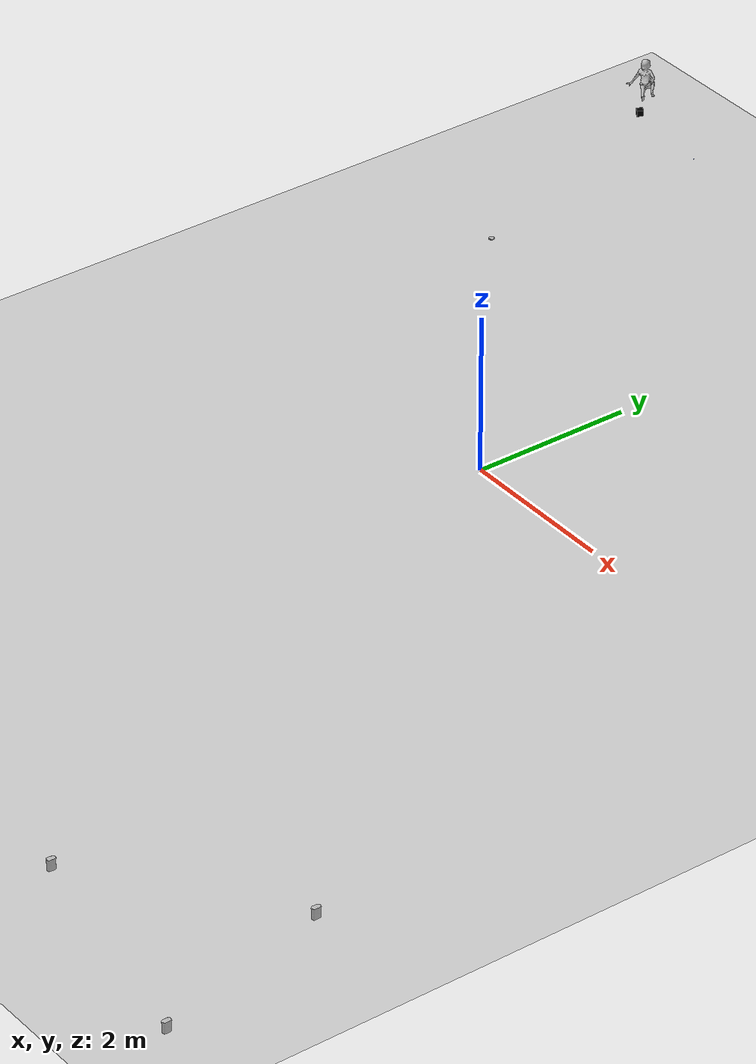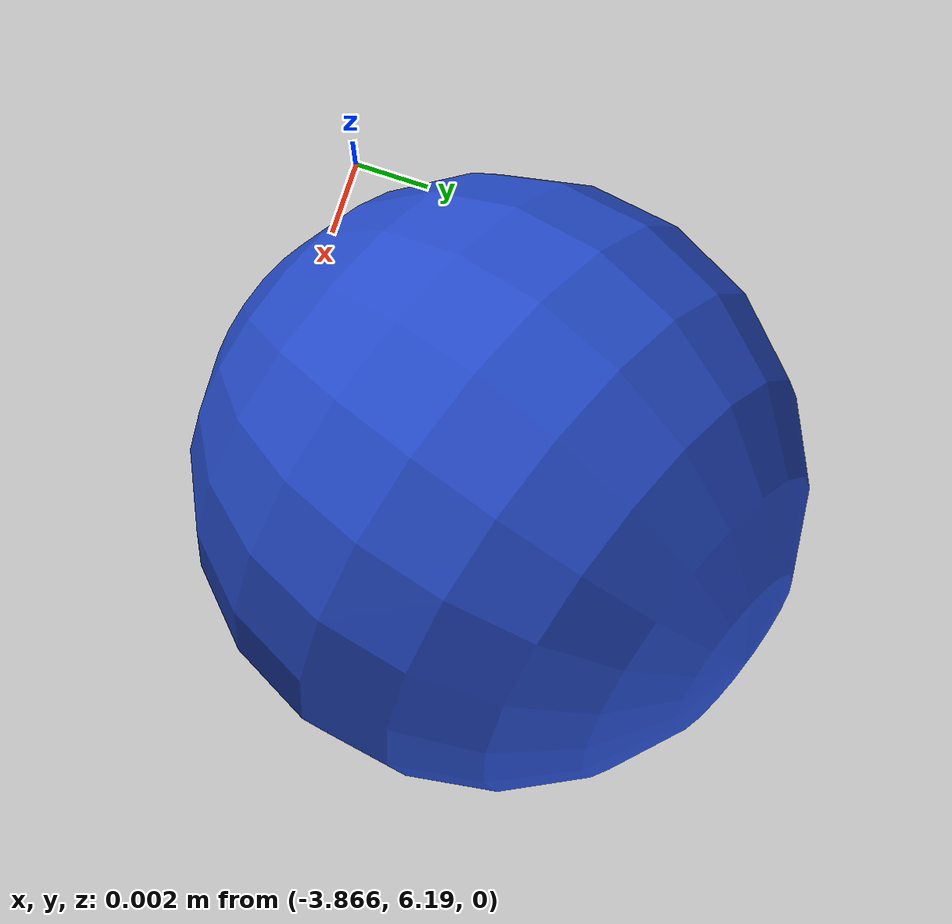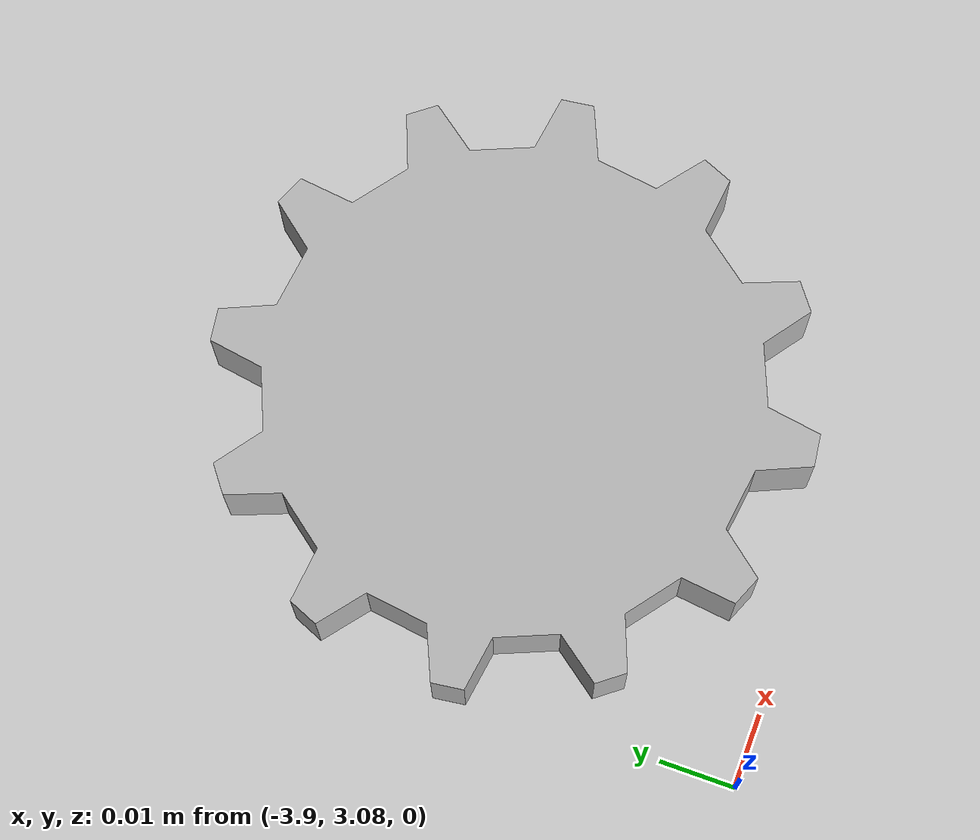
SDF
<sdf version="1.7">
 <world name="default">
  <light name="sun" type="directional">
   <pose>0 0 10 0 -0 0</pose>
   <diffuse>0.8 0.8 0.8 1</diffuse>
   <specular>0.2 0.2 0.2 1</specular>
   <attenuation>
    <range>1000</range>
    <constant>0.9</constant>
    <linear>0.01</linear>
    <quadratic>0.001</quadratic>
   </attenuation>
   <direction>-0.5 0.1 -0.9</direction>
   <spot><inner_angle>0</inner_angle><outer_angle>0</outer_angle><falloff>0</falloff></spot>
  </light>
  <model name="ground_plane">
   <static>1</static>
   <link name="link">
    <collision name="collision">
     <geometry><plane><normal>0 0 1</normal><size>100 100</size></plane></geometry>
     <surface>
      <contact><collide_bitmask>65535</collide_bitmask></contact>
      <friction><ode><mu>100</mu><mu2>50</mu2></ode></friction>
     </surface>
    </collision>
    <visual name="visual">
     <cast_shadows>0</cast_shadows>
     <geometry><plane><normal>0 0 1</normal><size>100 100</size></plane></geometry>
     <material>
      <script><uri>file://media/materials/scripts/gazebo.material</uri><name>Gazebo/Grey</name></script>
     </material>
    </visual>
   </link>
  </model>
  <gravity>0 0 -9.8</gravity>
  <magnetic_field>6e-06 2.3e-05 -4.2e-05</magnetic_field>
  <atmosphere type="adiabatic"/>
  <physics type="ode">
   <max_step_size>0.001</max_step_size>
   <real_time_factor>1</real_time_factor>
   <real_time_update_rate>1000</real_time_update_rate>
  </physics>
  <scene><ambient>0.4 0.4 0.4 1</ambient><background>0.7 0.7 0.7 1</background><shadows>1</shadows></scene>
  <audio><device>default</device></audio>
  <spherical_coordinates>
   <surface_model>EARTH_WGS84</surface_model>
   <latitude_deg>0</latitude_deg>
   <longitude_deg>0</longitude_deg>
   <elevation>0</elevation>
   <heading_deg>0</heading_deg>
  </spherical_coordinates>
  <light name="user_directional_light_0" type="directional">
   <pose>23.3336 -29.9529 1 0 -0 0</pose>
   <diffuse>0.5 0.5 0.5 1</diffuse>
   <specular>0.1 0.1 0.1 1</specular>
   <direction>0.1 0.1 -0.9</direction>
   <attenuation>
    <range>20</range>
    <constant>0.5</constant>
    <linear>0.01</linear>
    <quadratic>0.001</quadratic>
   </attenuation>
  </light>
  <light name="user_directional_light_1" type="directional">
   <pose>-23.2586 -34.1296 1 0 -0 0</pose>
   <diffuse>0.5 0.5 0.5 1</diffuse>
   <specular>0.1 0.1 0.1 1</specular>
   <direction>0.1 0.1 -0.9</direction>
   <attenuation>
    <range>20</range>
    <constant>0.5</constant>
    <linear>0.01</linear>
    <quadratic>0.001</quadratic>
   </attenuation>
  </light>
  <light name="user_directional_light_2" type="directional">
   <pose>0.602328 -38.8041 1 0 -0 0</pose>
   <diffuse>0.5 0.5 0.5 1</diffuse>
   <specular>0.1 0.1 0.1 1</specular>
   <direction>0.1 0.1 -0.9</direction>
   <attenuation>
    <range>20</range>
    <constant>0.5</constant>
    <linear>0.01</linear>
    <quadratic>0.001</quadratic>
   </attenuation>
  </light>
  <light name="user_directional_light_3" type="directional">
   <pose>21.4377 15.6328 1 0 -0 0</pose>
   <diffuse>0.5 0.5 0.5 1</diffuse>
   <specular>0.1 0.1 0.1 1</specular>
   <direction>0.1 0.1 -0.9</direction>
   <attenuation>
    <range>20</range>
    <constant>0.5</constant>
    <linear>0.01</linear>
    <quadratic>0.001</quadratic>
   </attenuation>
  </light>
  <light name="user_directional_light_4" type="directional">
   <pose>-19.8489 23.5683 1 0 -0 0</pose>
   <diffuse>0.5 0.5 0.5 1</diffuse>
   <specular>0.1 0.1 0.1 1</specular>
   <direction>0.1 0.1 -0.9</direction>
   <attenuation>
    <range>20</range>
    <constant>0.5</constant>
    <linear>0.01</linear>
    <quadratic>0.001</quadratic>
   </attenuation>
  </light>
  <light name="user_directional_light_5" type="directional">
   <pose>24.8705 -7.94977 1 0 -0 0</pose>
   <diffuse>0.5 0.5 0.5 1</diffuse>
   <specular>0.1 0.1 0.1 1</specular>
   <direction>0.1 0.1 -0.9</direction>
   <attenuation>
    <range>20</range>
    <constant>0.5</constant>
    <linear>0.01</linear>
    <quadratic>0.001</quadratic>
   </attenuation>
  </light>
  <light name="user_directional_light_6" type="directional">
   <pose>-20.8535 1.82174 1 0 -0 0</pose>
   <diffuse>0.5 0.5 0.5 1</diffuse>
   <specular>0.1 0.1 0.1 1</specular>
   <direction>0.1 0.1 -0.9</direction>
   <attenuation>
    <range>20</range>
    <constant>0.5</constant>
    <linear>0.01</linear>
    <quadratic>0.001</quadratic>
   </attenuation>
  </light>
  <light name="user_directional_light_7" type="directional">
   <pose>9.48126 24.5946 1 0 -0 0</pose>
   <diffuse>0.5 0.5 0.5 1</diffuse>
   <specular>0.1 0.1 0.1 1</specular>
   <direction>0.1 0.1 -0.9</direction>
   <attenuation>
    <range>20</range>
    <constant>0.5</constant>
    <linear>0.01</linear>
    <quadratic>0.001</quadratic>
   </attenuation>
  </light>
  <light name="user_directional_light_8" type="directional">
   <pose>-2.1673 26.1301 1 0 -0 0</pose>
   <diffuse>0.5 0.5 0.5 1</diffuse>
   <specular>0.1 0.1 0.1 1</specular>
   <direction>0.1 0.1 -0.9</direction>
   <attenuation>
    <range>20</range>
    <constant>0.5</constant>
    <linear>0.01</linear>
    <quadratic>0.001</quadratic>
   </attenuation>
  </light>
  <light name="user_directional_light_9" type="directional">
   <pose>-14.7782 23.9597 1 0 -0 0</pose>
   <diffuse>0.5 0.5 0.5 1</diffuse>
   <specular>0.1 0.1 0.1 1</specular>
   <direction>0.1 0.1 -0.9</direction>
   <attenuation>
    <range>20</range>
    <constant>0.5</constant>
    <linear>0.01</linear>
    <quadratic>0.001</quadratic>
   </attenuation>
  </light>
  <light name="user_directional_light_10" type="directional">
   <pose>15.9332 -36.7575 1 0 -0 0</pose>
   <diffuse>0.5 0.5 0.5 1</diffuse>
   <specular>0.1 0.1 0.1 1</specular>
   <direction>0.1 0.1 -0.9</direction>
   <attenuation>
    <range>20</range>
    <constant>0.5</constant>
    <linear>0.01</linear>
    <quadratic>0.001</quadratic>
   </attenuation>
  </light>
  <light name="user_directional_light_11" type="directional">
   <pose>-13.8316 -37.8102 1 0 -0 0</pose>
   <diffuse>0.5 0.5 0.5 1</diffuse>
   <specular>0.1 0.1 0.1 1</specular>
   <direction>0.1 0.1 -0.9</direction>
   <attenuation>
    <range>20</range>
    <constant>0.5</constant>
    <linear>0.01</linear>
    <quadratic>0.001</quadratic>
   </attenuation>
  </light>
  <model name="BREAKFAST_MENU">
   <link name="link_0">
    <visual name="visual">
     <geometry>
      <mesh>
       <uri>/home/vipul/.ignition/fuel/fuel.ignitionrobotics.org/googleresearch/models/breakfast_menu/1/meshes/model.obj</uri>
      </mesh>
     </geometry>
    </visual>
    <collision name="collision_0">
     <geometry>
      <mesh>
       <uri>/home/vipul/.ignition/fuel/fuel.ignitionrobotics.org/googleresearch/models/breakfast_menu/1/meshes/model.obj</uri>
      </mesh>
     </geometry>
    </collision>
    <inertial>
     <inertia><ixx>1</ixx><ixy>0</ixy><ixz>0</ixz><iyy>1</iyy><iyz>0</iyz><izz>1</izz></inertia>
     <mass>1</mass>
    </inertial>
   </link>
   <pose>3.20367 -7.93726 -0.000455 -0.004645 -0.007947 -0.069831</pose>
  </model>
  <model name="3D_Dollhouse_TablePurple">
   <link name="link_0">
    <visual name="visual">
     <geometry>
      <mesh>
       <uri>/home/vipul/.ignition/fuel/fuel.ignitionrobotics.org/googleresearch/models/3d_dollhouse_tablepurple/1/meshes/model.obj</uri>
      </mesh>
     </geometry>
    </visual>
    <collision name="collision_0">
     <geometry>
      <mesh>
       <uri>/home/vipul/.ignition/fuel/fuel.ignitionrobotics.org/googleresearch/models/3d_dollhouse_tablepurple/1/meshes/model.obj</uri>
      </mesh>
     </geometry>
    </collision>
    <inertial>
     <inertia><ixx>1</ixx><ixy>0</ixy><ixz>0</ixz><iyy>1</iyy><iyz>0</iyz><izz>1</izz></inertia>
     <mass>1</mass>
    </inertial>
   </link>
   <pose>6.04295 -8.49941 -0.00049 -0.006494 0.0117 -0.000119</pose>
  </model>
  <model name="Womens_Teva_Capistrano_Bootie">
   <link name="link_0">
    <visual name="visual">
     <geometry>
      <mesh>
       <uri>/home/vipul/.ignition/fuel/fuel.ignitionrobotics.org/googleresearch/models/womens_teva_capistrano_bootie/1/meshes/model.obj</uri>
      </mesh>
     </geometry>
    </visual>
    <collision name="collision_0">
     <geometry>
      <mesh>
       <uri>/home/vipul/.ignition/fuel/fuel.ignitionrobotics.org/googleresearch/models/womens_teva_capistrano_bootie/1/meshes/model.obj</uri>
      </mesh>
     </geometry>
    </collision>
    <inertial>
     <inertia><ixx>1</ixx><ixy>0</ixy><ixz>0</ixz><iyy>1</iyy><iyz>0</iyz><izz>1</izz></inertia>
     <mass>1</mass>
    </inertial>
   </link>
   <pose>5.4575 -6.26247 -0.000232 -0.001699 0.011557 -1e-05</pose>
  </model>
  <model name="marble_1_5cm">
   <link name="link">
    <pose>0 0 0.0075 0 -0 0</pose>
    <inertial>
     <mass>0.0062</mass>
     <inertia>
      <ixx>1.395e-07</ixx>
      <ixy>0</ixy>
      <ixz>0</ixz>
      <iyy>1.395e-07</iyy>
      <iyz>0</iyz>
      <izz>1.395e-07</izz>
     </inertia>
    </inertial>
    <collision name="collision">
     <geometry><sphere><radius>0.0075</radius></sphere></geometry>
     <surface>
      <contact>
       <poissons_ratio>0.22</poissons_ratio>
       <elastic_modulus>5.1e+10</elastic_modulus>
       <ode><kp>100000</kp><kd>100</kd><max_vel>100</max_vel><min_depth>0.001</min_depth></ode>
      </contact>
      <friction>
       <torsional>
        <coefficient>1</coefficient>
        <use_patch_radius>0</use_patch_radius>
        <surface_radius>0.01</surface_radius>
       </torsional>
      </friction>
     </surface>
    </collision>
    <visual name="visual">
     <geometry><sphere><radius>0.0075</radius></sphere></geometry>
     <material>
      <script><uri>file://media/materials/scripts/gazebo.material</uri><name>Gazebo/Blue</name></script>
     </material>
    </visual>
    <velocity_decay><linear>0</linear><angular>0.005</angular></velocity_decay>
   </link>
   <pose>-3.85517 6.2037 0.007489 1.71217 -0.359804 -0.401598</pose>
  </model>
  <model name="gear_part">
   <link name="link">
    <inertial>
     <pose>0 0 0.005875 0 -0 0</pose>
     <mass>0.5</mass>
     <inertia>
      <ixx>0.000198203</ixx>
      <ixy>0</ixy>
      <ixz>0</ixz>
      <iyy>0.000198203</iyy>
      <iyz>0</iyz>
      <izz>0.000384405</izz>
     </inertia>
    </inertial>
    <collision name="collision">
     <pose>0 0 0.005875 0 -0 0</pose>
     <geometry><cylinder><length>0.012</length><radius>0.0392125</radius></cylinder></geometry>
     <surface><contact><ode><max_vel>0.1</max_vel><min_depth>0.001</min_depth></ode></contact></surface>
    </collision>
    <visual name="visual">
     <geometry><mesh><uri>model://gear_part/meshes/gear.dae</uri><scale>0.25 0.25 0.25</scale></mesh></geometry>
     <material>
      <script>
       <uri>model://arm_part/materials/scripts</uri>
       <uri>model://arm_part/materials/textures</uri>
       <name>ArmPart/Diffuse</name>
      </script>
     </material>
    </visual>
   </link>
   <pose>-3.8628 3.12304 -0 -5e-06 5e-06 -0</pose>
  </model>
  <model name="oliveeye">
   <link name="link">
    <inertial>
     <pose>0 -0.1 0.95 0 -0 0</pose>
     <mass>80</mass>
     <inertia><ixx>24.88</ixx><ixy>0</ixy><ixz>0</ixz><iyy>25.73</iyy><iyz>0</iyz><izz>2.48</izz></inertia>
    </inertial>
    <collision name="bottom">
     <pose>0 0 0.01 0 -0 1.57</pose>
     <geometry><box><size>0.5 0.35 0.02</size></box></geometry>
    </collision>
    <collision name="person">
     <pose>0 0 0.02 0 -0 1.57</pose>
     <geometry><mesh><uri>model://oliveeye/meshes/oliveeyev2.dae</uri></mesh></geometry>
    </collision>
    <visual name="visual">
     <pose>0 0 0.02 0 -0 1.57</pose>
     <geometry><mesh><uri>model://oliveeye/meshes/oliveeyev2.dae</uri></mesh></geometry>
    </visual>
   </link>
   <pose>-4.96915 6.33698 0.398955 0.000115 2e-06 -0.568638</pose>
  </model>
  <model name="cardboard_box">
   <link name="link">
    <inertial>
     <mass>2</mass>
     <inertia>
      <ixx>0.0416667</ixx>
      <ixy>0</ixy>
      <ixz>0</ixz>
      <iyy>0.0566667</iyy>
      <iyz>0</iyz>
      <izz>0.0683333</izz>
     </inertia>
    </inertial>
    <visual name="visual">
     <pose>0 0 -0.15 0 -0 0</pose>
     <geometry>
      <mesh><uri>model://cardboard_box/meshes/cardboard_box.dae</uri><scale>0.2 0.2 0.2</scale></mesh>
     </geometry>
     <material>
      <shader type="pixel"><normal_map>__default__</normal_map></shader>
      <script><name>ModelPreview_41::link::visual_MATERIAL_</name><uri>__default__</uri></script>
      <ambient>0 0 0 1</ambient>
      <diffuse>0 0 0 1</diffuse>
      <specular>0 0 0 1</specular>
      <emissive>0 0 0 1</emissive>
     </material>
    </visual>
    <collision name="collision">
     <geometry><box><size>0.5 0.4 0.4</size></box></geometry>
     <surface>
      <friction>
       <ode><mu>1</mu><mu2>1</mu2><fdir1>0 0 0</fdir1><slip1>0</slip1><slip2>0</slip2></ode>
       <torsional>
        <coefficient>1</coefficient>
        <patch_radius>0</patch_radius>
        <surface_radius>0</surface_radius>
        <use_patch_radius>1</use_patch_radius>
        <ode><slip>0</slip></ode>
       </torsional>
      </friction>
      <bounce><restitution_coefficient>0</restitution_coefficient><threshold>1e+06</threshold></bounce>
      <contact>
       <collide_without_contact>0</collide_without_contact>
       <collide_without_contact_bitmask>1</collide_without_contact_bitmask>
       <collide_bitmask>1</collide_bitmask>
       <ode>
        <soft_cfm>0</soft_cfm>
        <soft_erp>0.2</soft_erp>
        <kp>1e+07</kp>
        <kd>1</kd>
        <max_vel>0.1</max_vel>
        <min_depth>0.001</min_depth>
       </ode>
       <bullet>
        <split_impulse>1</split_impulse>
        <split_impulse_penetration_threshold>-0.01</split_impulse_penetration_threshold>
        <soft_cfm>0</soft_cfm>
        <soft_erp>0.2</soft_erp>
        <kp>1e+07</kp>
        <kd>1</kd>
       </bullet>
      </contact>
     </surface>
    </collision>
   </link>
   <static>0</static>
   <pose>-5.02001 6.29208 0.198973 2.6e-05 2e-06 -0.510828</pose>
  </model>
 </world>
</sdf>
